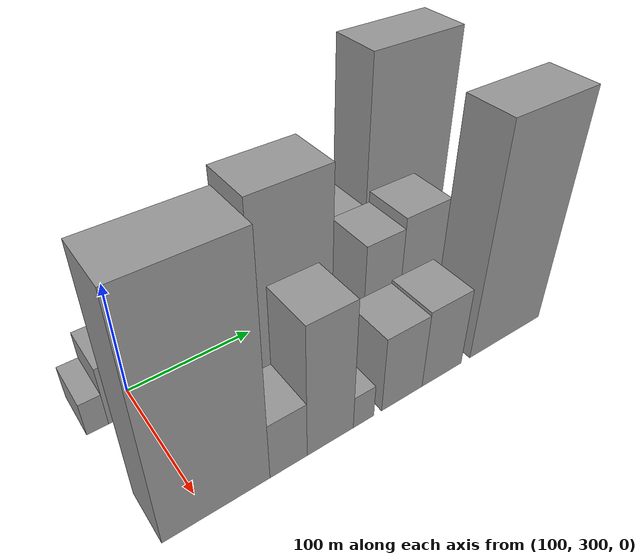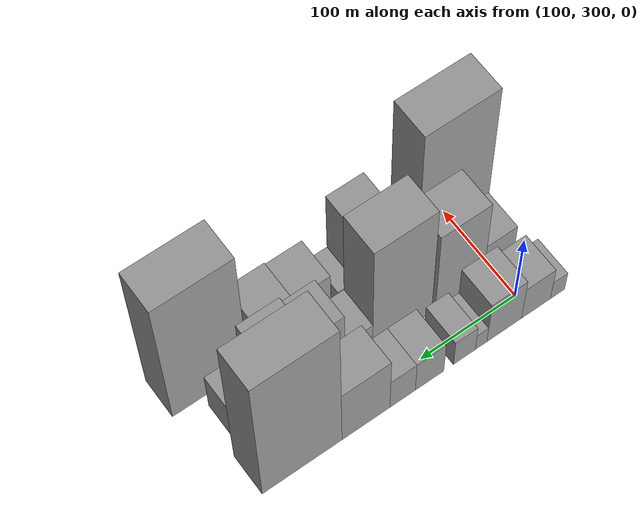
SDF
<sdf version="1.6">
 <world name="default">
  <model name="building_22">
   <static>1</static>
   <pose>100.0000 270.2746 0 0.000000 0.000000 0.000000</pose>
   <link name="link">
    <pose>0 0 15.00 0 0 0</pose>
    <collision name="collision"><geometry><box><size>40.0000 15.4090 30.0000</size></box></geometry></collision>
    <visual name="visual">
     <cast_shadows>0</cast_shadows>
     <geometry><box><size>40.0000 15.4090 30.0000</size></box></geometry>
     <material>
      <script>
       <uri>model://grey_wall/materials/scripts</uri>
       <uri>model://grey_wall/materials/textures</uri>
       <name>vrc/grey_wall</name>
      </script>
     </material>
    </visual>
   </link>
  </model>
  <model name="building_23">
   <static>1</static>
   <pose>100.0000 293.4356 0 0.000000 0.000000 0.000000</pose>
   <link name="link">
    <pose>0 0 27.00 0 0 0</pose>
    <collision name="collision"><geometry><box><size>40.0000 30.9131 54.0000</size></box></geometry></collision>
    <visual name="visual">
     <cast_shadows>0</cast_shadows>
     <geometry><box><size>40.0000 30.9131 54.0000</size></box></geometry>
     <material>
      <script>
       <uri>model://grey_wall/materials/scripts</uri>
       <uri>model://grey_wall/materials/textures</uri>
       <name>vrc/grey_wall</name>
      </script>
     </material>
    </visual>
   </link>
  </model>
  <model name="building_24">
   <static>1</static>
   <pose>100.0000 327.2846 0 0.000000 0.000000 0.000000</pose>
   <link name="link">
    <pose>0 0 34.50 0 0 0</pose>
    <collision name="collision"><geometry><box><size>40.0000 36.7847 69.0000</size></box></geometry></collision>
    <visual name="visual">
     <cast_shadows>0</cast_shadows>
     <geometry><box><size>40.0000 36.7847 69.0000</size></box></geometry>
     <material>
      <script>
       <uri>model://grey_wall/materials/scripts</uri>
       <uri>model://grey_wall/materials/textures</uri>
       <name>vrc/grey_wall</name>
      </script>
     </material>
    </visual>
   </link>
  </model>
  <model name="building_25">
   <static>1</static>
   <pose>100.0000 351.6811 0 0.000000 0.000000 0.000000</pose>
   <link name="link">
    <pose>0 0 13.50 0 0 0</pose>
    <collision name="collision"><geometry><box><size>40.0000 12.0084 27.0000</size></box></geometry></collision>
    <visual name="visual">
     <cast_shadows>0</cast_shadows>
     <geometry><box><size>40.0000 12.0084 27.0000</size></box></geometry>
     <material>
      <script>
       <uri>model://grey_wall/materials/scripts</uri>
       <uri>model://grey_wall/materials/textures</uri>
       <name>vrc/grey_wall</name>
      </script>
     </material>
    </visual>
   </link>
  </model>
  <model name="building_26">
   <static>1</static>
   <pose>100.0000 369.1910 0 0.000000 0.000000 0.000000</pose>
   <link name="link">
    <pose>0 0 21.00 0 0 0</pose>
    <collision name="collision"><geometry><box><size>40.0000 23.0114 42.0000</size></box></geometry></collision>
    <visual name="visual">
     <cast_shadows>0</cast_shadows>
     <geometry><box><size>40.0000 23.0114 42.0000</size></box></geometry>
     <material>
      <script>
       <uri>model://grey_wall/materials/scripts</uri>
       <uri>model://grey_wall/materials/textures</uri>
       <name>vrc/grey_wall</name>
      </script>
     </material>
    </visual>
   </link>
  </model>
  <model name="building_27">
   <static>1</static>
   <pose>100.0000 405.4047 0 0.000000 0.000000 0.000000</pose>
   <link name="link">
    <pose>0 0 25.50 0 0 0</pose>
    <collision name="collision"><geometry><box><size>40.0000 29.4160 51.0000</size></box></geometry></collision>
    <visual name="visual">
     <cast_shadows>0</cast_shadows>
     <geometry><box><size>40.0000 29.4160 51.0000</size></box></geometry>
     <material>
      <script>
       <uri>model://grey_wall/materials/scripts</uri>
       <uri>model://grey_wall/materials/textures</uri>
       <name>vrc/grey_wall</name>
      </script>
     </material>
    </visual>
   </link>
  </model>
  <model name="building_28">
   <static>1</static>
   <pose>100.0000 433.1273 0 0.000000 0.000000 0.000000</pose>
   <link name="link">
    <pose>0 0 25.50 0 0 0</pose>
    <collision name="collision"><geometry><box><size>40.0000 26.0293 51.0000</size></box></geometry></collision>
    <visual name="visual">
     <cast_shadows>0</cast_shadows>
     <geometry><box><size>40.0000 26.0293 51.0000</size></box></geometry>
     <material>
      <script>
       <uri>model://grey_wall/materials/scripts</uri>
       <uri>model://grey_wall/materials/textures</uri>
       <name>vrc/grey_wall</name>
      </script>
     </material>
    </visual>
   </link>
  </model>
  <model name="building_29">
   <static>1</static>
   <pose>100.0000 470.3106 0 0.000000 0.000000 0.000000</pose>
   <link name="link">
    <pose>0 0 45.00 0 0 0</pose>
    <collision name="collision"><geometry><box><size>40.0000 48.3374 90.0000</size></box></geometry></collision>
    <visual name="visual">
     <cast_shadows>0</cast_shadows>
     <geometry><box><size>40.0000 48.3374 90.0000</size></box></geometry>
     <material>
      <script>
       <uri>model://grey_wall/materials/scripts</uri>
       <uri>model://grey_wall/materials/textures</uri>
       <name>vrc/grey_wall</name>
      </script>
     </material>
    </visual>
   </link>
  </model>
  <model name="building_30">
   <static>1</static>
   <pose>100.0000 533.9974 0 0.000000 0.000000 0.000000</pose>
   <link name="link">
    <pose>0 0 105.00 0 0 0</pose>
    <collision name="collision"><geometry><box><size>40.0000 79.0361 210.0000</size></box></geometry></collision>
    <visual name="visual">
     <cast_shadows>0</cast_shadows>
     <geometry><box><size>40.0000 79.0361 210.0000</size></box></geometry>
     <material>
      <script>
       <uri>model://grey_wall/materials/scripts</uri>
       <uri>model://grey_wall/materials/textures</uri>
       <name>vrc/grey_wall</name>
      </script>
     </material>
    </visual>
   </link>
  </model>
  <model name="building_52">
   <static>1</static>
   <pose>149.0000 295.5538 0 0.000000 0.000000 0.000000</pose>
   <link name="link">
    <pose>0 0 28.50 0 0 0</pose>
    <collision name="collision"><geometry><box><size>40.0000 31.9012 57.0000</size></box></geometry></collision>
    <visual name="visual">
     <cast_shadows>0</cast_shadows>
     <geometry><box><size>40.0000 31.9012 57.0000</size></box></geometry>
     <material>
      <script>
       <uri>model://grey_wall/materials/scripts</uri>
       <uri>model://grey_wall/materials/textures</uri>
       <name>vrc/grey_wall</name>
      </script>
     </material>
    </visual>
   </link>
  </model>
  <model name="building_53">
   <static>1</static>
   <pose>149.0000 336.9416 0 0.000000 0.000000 0.000000</pose>
   <link name="link">
    <pose>0 0 64.50 0 0 0</pose>
    <collision name="collision"><geometry><box><size>40.0000 50.8743 129.0000</size></box></geometry></collision>
    <visual name="visual">
     <cast_shadows>0</cast_shadows>
     <geometry><box><size>40.0000 50.8743 129.0000</size></box></geometry>
     <material>
      <script>
       <uri>model://grey_wall/materials/scripts</uri>
       <uri>model://grey_wall/materials/textures</uri>
       <name>vrc/grey_wall</name>
      </script>
     </material>
    </visual>
   </link>
  </model>
  <model name="building_54">
   <static>1</static>
   <pose>149.0000 397.1230 0 0.000000 0.000000 0.000000</pose>
   <link name="link">
    <pose>0 0 88.50 0 0 0</pose>
    <collision name="collision"><geometry><box><size>40.0000 61.4886 177.0000</size></box></geometry></collision>
    <visual name="visual">
     <cast_shadows>0</cast_shadows>
     <geometry><box><size>40.0000 61.4886 177.0000</size></box></geometry>
     <material>
      <script>
       <uri>model://grey_wall/materials/scripts</uri>
       <uri>model://grey_wall/materials/textures</uri>
       <name>vrc/grey_wall</name>
      </script>
     </material>
    </visual>
   </link>
  </model>
  <model name="building_55">
   <static>1</static>
   <pose>149.0000 441.8841 0 0.000000 0.000000 0.000000</pose>
   <link name="link">
    <pose>0 0 25.50 0 0 0</pose>
    <collision name="collision"><geometry><box><size>40.0000 28.0337 51.0000</size></box></geometry></collision>
    <visual name="visual">
     <cast_shadows>0</cast_shadows>
     <geometry><box><size>40.0000 28.0337 51.0000</size></box></geometry>
     <material>
      <script>
       <uri>model://grey_wall/materials/scripts</uri>
       <uri>model://grey_wall/materials/textures</uri>
       <name>vrc/grey_wall</name>
      </script>
     </material>
    </visual>
   </link>
  </model>
  <model name="building_56">
   <static>1</static>
   <pose>149.0000 472.7387 0 0.000000 0.000000 0.000000</pose>
   <link name="link">
    <pose>0 0 51.00 0 0 0</pose>
    <collision name="collision"><geometry><box><size>40.0000 33.6756 102.0000</size></box></geometry></collision>
    <visual name="visual">
     <cast_shadows>0</cast_shadows>
     <geometry><box><size>40.0000 33.6756 102.0000</size></box></geometry>
     <material>
      <script>
       <uri>model://grey_wall/materials/scripts</uri>
       <uri>model://grey_wall/materials/textures</uri>
       <name>vrc/grey_wall</name>
      </script>
     </material>
    </visual>
   </link>
  </model>
  <model name="building_57">
   <static>1</static>
   <pose>149.0000 510.3252 0 0.000000 0.000000 0.000000</pose>
   <link name="link">
    <pose>0 0 55.50 0 0 0</pose>
    <collision name="collision"><geometry><box><size>40.0000 41.4974 111.0000</size></box></geometry></collision>
    <visual name="visual">
     <cast_shadows>0</cast_shadows>
     <geometry><box><size>40.0000 41.4974 111.0000</size></box></geometry>
     <material>
      <script>
       <uri>model://grey_wall/materials/scripts</uri>
       <uri>model://grey_wall/materials/textures</uri>
       <name>vrc/grey_wall</name>
      </script>
     </material>
    </visual>
   </link>
  </model>
  <model name="building_58">
   <static>1</static>
   <pose>149.0000 550.0989 0 0.000000 0.000000 0.000000</pose>
   <link name="link">
    <pose>0 0 28.50 0 0 0</pose>
    <collision name="collision"><geometry><box><size>40.0000 30.0500 57.0000</size></box></geometry></collision>
    <visual name="visual">
     <cast_shadows>0</cast_shadows>
     <geometry><box><size>40.0000 30.0500 57.0000</size></box></geometry>
     <material>
      <script>
       <uri>model://grey_wall/materials/scripts</uri>
       <uri>model://grey_wall/materials/textures</uri>
       <name>vrc/grey_wall</name>
      </script>
     </material>
    </visual>
   </link>
  </model>
  <model name="building_85">
   <static>1</static>
   <pose>198.0000 306.9868 0 0.000000 0.000000 0.000000</pose>
   <link name="link">
    <pose>0 0 99.00 0 0 0</pose>
    <collision name="collision"><geometry><box><size>40.0000 74.3928 198.0000</size></box></geometry></collision>
    <visual name="visual">
     <cast_shadows>0</cast_shadows>
     <geometry><box><size>40.0000 74.3928 198.0000</size></box></geometry>
     <material>
      <script>
       <uri>model://grey_wall/materials/scripts</uri>
       <uri>model://grey_wall/materials/textures</uri>
       <name>vrc/grey_wall</name>
      </script>
     </material>
    </visual>
   </link>
  </model>
  <model name="building_86">
   <static>1</static>
   <pose>198.0000 358.3846 0 0.000000 0.000000 0.000000</pose>
   <link name="link">
    <pose>0 0 25.50 0 0 0</pose>
    <collision name="collision"><geometry><box><size>40.0000 28.4028 51.0000</size></box></geometry></collision>
    <visual name="visual">
     <cast_shadows>0</cast_shadows>
     <geometry><box><size>40.0000 28.4028 51.0000</size></box></geometry>
     <material>
      <script>
       <uri>model://grey_wall/materials/scripts</uri>
       <uri>model://grey_wall/materials/textures</uri>
       <name>vrc/grey_wall</name>
      </script>
     </material>
    </visual>
   </link>
  </model>
  <model name="building_87">
   <static>1</static>
   <pose>198.0000 391.3989 0 0.000000 0.000000 0.000000</pose>
   <link name="link">
    <pose>0 0 58.50 0 0 0</pose>
    <collision name="collision"><geometry><box><size>40.0000 37.6257 117.0000</size></box></geometry></collision>
    <visual name="visual">
     <cast_shadows>0</cast_shadows>
     <geometry><box><size>40.0000 37.6257 117.0000</size></box></geometry>
     <material>
      <script>
       <uri>model://grey_wall/materials/scripts</uri>
       <uri>model://grey_wall/materials/textures</uri>
       <name>vrc/grey_wall</name>
      </script>
     </material>
    </visual>
   </link>
  </model>
  <model name="building_88">
   <static>1</static>
   <pose>198.0000 419.0307 0 0.000000 0.000000 0.000000</pose>
   <link name="link">
    <pose>0 0 15.00 0 0 0</pose>
    <collision name="collision"><geometry><box><size>40.0000 17.6379 30.0000</size></box></geometry></collision>
    <visual name="visual">
     <cast_shadows>0</cast_shadows>
     <geometry><box><size>40.0000 17.6379 30.0000</size></box></geometry>
     <material>
      <script>
       <uri>model://grey_wall/materials/scripts</uri>
       <uri>model://grey_wall/materials/textures</uri>
       <name>vrc/grey_wall</name>
      </script>
     </material>
    </visual>
   </link>
  </model>
  <model name="building_89">
   <static>1</static>
   <pose>198.0000 453.3799 0 0.000000 0.000000 0.000000</pose>
   <link name="link">
    <pose>0 0 34.50 0 0 0</pose>
    <collision name="collision"><geometry><box><size>40.0000 37.0603 69.0000</size></box></geometry></collision>
    <visual name="visual">
     <cast_shadows>0</cast_shadows>
     <geometry><box><size>40.0000 37.0603 69.0000</size></box></geometry>
     <material>
      <script>
       <uri>model://grey_wall/materials/scripts</uri>
       <uri>model://grey_wall/materials/textures</uri>
       <name>vrc/grey_wall</name>
      </script>
     </material>
    </visual>
   </link>
  </model>
  <model name="building_90">
   <static>1</static>
   <pose>198.0000 491.1298 0 0.000000 0.000000 0.000000</pose>
   <link name="link">
    <pose>0 0 36.00 0 0 0</pose>
    <collision name="collision"><geometry><box><size>40.0000 38.4395 72.0000</size></box></geometry></collision>
    <visual name="visual">
     <cast_shadows>0</cast_shadows>
     <geometry><box><size>40.0000 38.4395 72.0000</size></box></geometry>
     <material>
      <script>
       <uri>model://grey_wall/materials/scripts</uri>
       <uri>model://grey_wall/materials/textures</uri>
       <name>vrc/grey_wall</name>
      </script>
     </material>
    </visual>
   </link>
  </model>
  <model name="building_91">
   <static>1</static>
   <pose>198.0000 557.0991 0 0.000000 0.000000 0.000000</pose>
   <link name="link">
    <pose>0 0 99.00 0 0 0</pose>
    <collision name="collision"><geometry><box><size>40.0000 75.4991 198.0000</size></box></geometry></collision>
    <visual name="visual">
     <cast_shadows>0</cast_shadows>
     <geometry><box><size>40.0000 75.4991 198.0000</size></box></geometry>
     <material>
      <script>
       <uri>model://grey_wall/materials/scripts</uri>
       <uri>model://grey_wall/materials/textures</uri>
       <name>vrc/grey_wall</name>
      </script>
     </material>
    </visual>
   </link>
  </model>
 </world>
</sdf>
